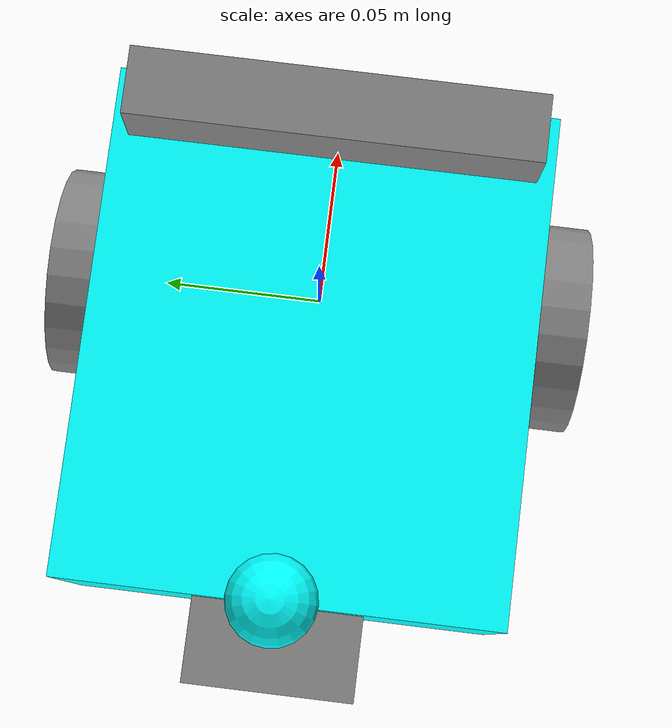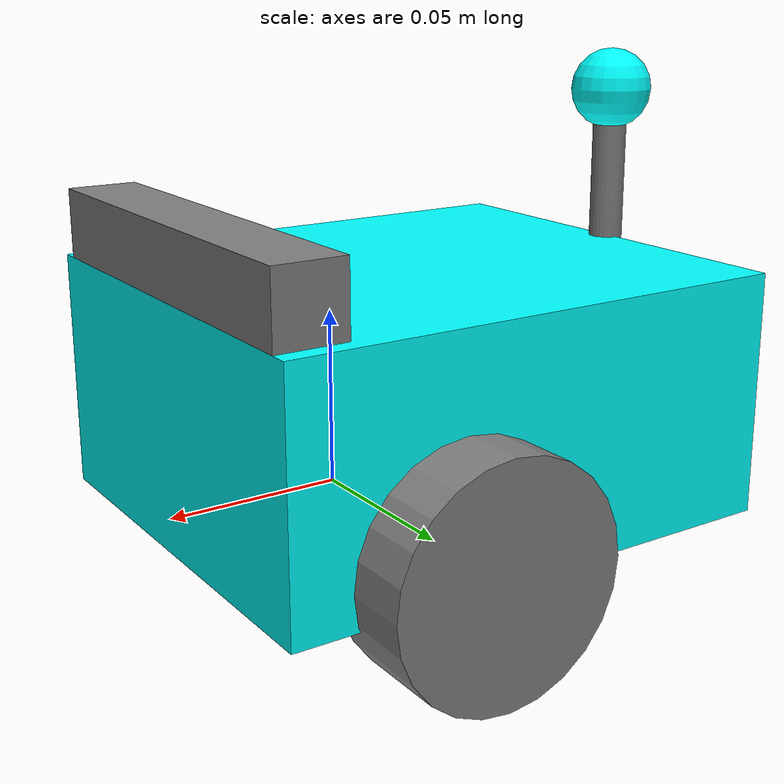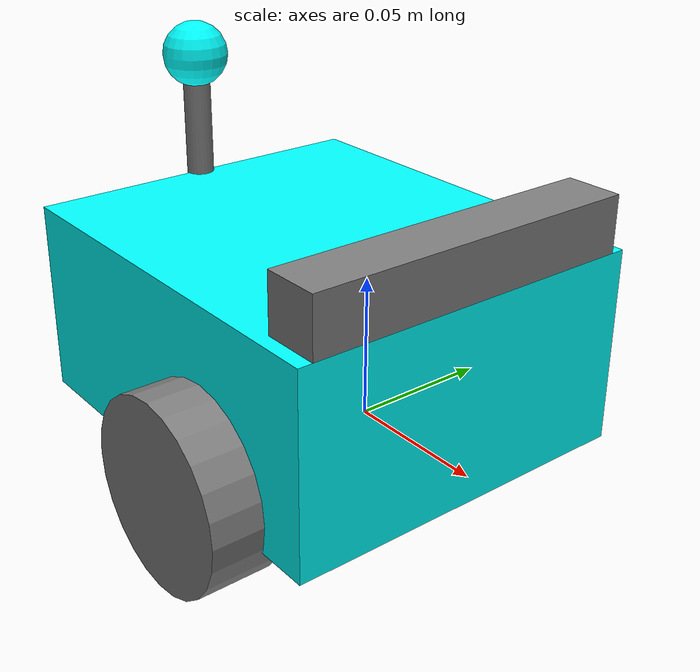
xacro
<?xml version="1.0" ?>
<robot name='robot' xmlns:xacro="http://ros.org/wiki/xacro">

    <xacro:include filename="$(find my_robot)/urdf/robot.gazebo.xacro" />

    <xacro:property name="chassis_length" value="0.15"/>
    <xacro:property name="chassis_width" value="0.13"/>
    <xacro:property name="chassis_height" value="0.07"/>

    <xacro:property name="wheel_radius" value="0.033"/>
    <xacro:property name="wheel_thickness" value="0.026"/>
    <xacro:property name="wheel_mass" value="0.05"/>

    <xacro:property name="wheel_offset_x" value="0.1"/>
    <xacro:property name="wheel_offset_y" value="0.07"/>
    <xacro:property name="wheel_offset_z" value="0.01"/>

    <xacro:property name="caster_wheel_radius" value="0.02"/>
    <xacro:property name="caster_wheel_mass" value="0.01"/>
    <xacro:property name="caster_wheel_offset_x" value="0.02"/>
    <xacro:property name="caster_wheel_offset_z" value="${wheel_offset_z - wheel_radius + caster_wheel_radius}"/>
    <xacro:property name="mass" value="1.0"/>
    <xacro:property name="M_PI" value="3.1415926535897931"/>

    <material name="Cyan">
        <color rgba="0 1.0 1.0 1.0"/>
    </material>

    <material name="Gray">
        <color rgba="0.5 0.5 0.5 1.0"/>
    </material>

    <link name="base_link">
    </link>

    <link name="base_footprint">
    </link>

    <joint name="base_footprint_joint" type="fixed">
        <parent link="base_link"/>
        <child link="base_footprint"/>
        <origin xyz="0 0 -0.138" rpy="0 0 0"/>
    </joint>

    <joint name="chassis_joint" type="fixed">
        <parent link="base_link"/>
        <child link="chassis"/>
        <origin xyz="${-wheel_offset_x} 0 ${-wheel_offset_z}"/>
    </joint>

    <link name='chassis'>
        <inertial>
            <origin xyz="${chassis_length/2} 0 ${chassis_height/2}" rpy="0 0 0"/>
            <mass value="${mass}" />
            <inertia ixx="${(1/12) * mass * (chassis_width*chassis_width+chassis_height*chassis_height)}" ixy="0.0" ixz="0.0"
                     iyy="${(1/12) * mass * (chassis_length*chassis_length+chassis_height*chassis_height)}" iyz="0.0"
                     izz="${(1/12) * mass * (chassis_length*chassis_length+chassis_width*chassis_width)}" />
        </inertial>
        <visual>
            <origin xyz="${chassis_length/2} 0 ${chassis_height/2}"/>
            <geometry>
                <box size="${chassis_length} ${chassis_width} ${chassis_height}"/>
            </geometry>
            <material name="Cyan"/>
        </visual>
        <collision>
            <origin xyz="${chassis_length/2} 0 ${chassis_height/2}"/>
            <geometry>
                <box size="${chassis_length} ${chassis_width} ${chassis_height}"/>
            </geometry>
        </collision>
    </link>

    <joint name="left_wheel_joint" type="continuous">
        <parent link="base_link"/>
        <child link="left_wheel"/>
        <origin xyz="0 ${wheel_offset_y} 0" rpy="-${M_PI/2} 0 0" />
        <axis xyz="0 0 1"/>
    </joint>

    <link name="left_wheel">
        <visual>
            <geometry>
                <cylinder radius="${wheel_radius}" length="${wheel_thickness}"/>
            </geometry>
            <material name="Gray"/>
        </visual>
        <collision>
            <geometry>
                <sphere radius="${wheel_radius}"/>
            </geometry>
        </collision>
        <inertial>
            <origin xyz="0 0 0" rpy="0 0 0"/>
            <mass value="${wheel_mass}" />
            <inertia ixx="${(1/12) * wheel_mass * (3*wheel_radius*wheel_radius + wheel_thickness*wheel_thickness)}" ixy="0.0" ixz="0.0"
                     iyy="${(1/12) * wheel_mass * (3*wheel_radius*wheel_radius + wheel_thickness*wheel_thickness)}" iyz="0.0"
                     izz="${(1/2) * wheel_mass * (wheel_radius*wheel_radius)}" />
        </inertial>
    </link>

    <joint name="right_wheel_joint" type="continuous">
        <parent link="base_link"/>
        <child link="right_wheel"/>
        <origin xyz="0 ${-wheel_offset_y} 0" rpy="${M_PI/2} 0 0" />
        <axis xyz="0 0 -1"/>
    </joint>

    <link name="right_wheel">
        <visual>
            <geometry>
                <cylinder radius="${wheel_radius}" length="${wheel_thickness}"/>
            </geometry>
            <material name="Gray"/>
        </visual>
        <collision>
            <geometry>
                <sphere radius="${wheel_radius}"/>
            </geometry>
        </collision>
        <inertial>
            <origin xyz="0 0 0" rpy="0 0 0"/>
            <mass value="${wheel_mass}" />
            <inertia ixx="${(1/12) * wheel_mass * (3*wheel_radius*wheel_radius + wheel_thickness*wheel_thickness)}" ixy="0.0" ixz="0.0"
                     iyy="${(1/12) * wheel_mass * (3*wheel_radius*wheel_radius + wheel_thickness*wheel_thickness)}" iyz="0.0"
                     izz="${(1/2) * wheel_mass * (wheel_radius*wheel_radius)}" />
        </inertial>
    </link>

    <joint name="caster_wheel_joint" type="fixed">
        <parent link="chassis"/>
        <child link="caster_wheel"/>
        <origin xyz="${caster_wheel_offset_x} 0 ${caster_wheel_offset_z}"/>
    </joint>

    <link name="caster_wheel">
        <visual>
            <geometry>
                <sphere radius="${caster_wheel_radius}"/>
            </geometry>
            <material name="Cyan"/>
        </visual>
        <collision>
            <geometry>
                <sphere radius="${caster_wheel_radius}"/>
            </geometry>
        </collision>
        <inertial>
            <origin xyz="0 0 0" rpy="0 0 0"/>
            <mass value="${caster_wheel_mass}" />
            <inertia ixx="${(2/5) * caster_wheel_mass * (caster_wheel_radius*caster_wheel_radius)}" ixy="0.0" ixz="0.0"
                     iyy="${(2/5) * caster_wheel_mass * (caster_wheel_radius*caster_wheel_radius)}" iyz="0.0"
                     izz="${(2/5) * caster_wheel_mass * (caster_wheel_radius*caster_wheel_radius)}" />
        </inertial>
    </link>

    <gazebo reference="caster_wheel">
        <mu1 value="0.001"/>
        <mu2 value="0.001"/>
    </gazebo>

    <!-- ANTENNA -->
    <link name="antenna_base">
        <visual>
            <origin xyz="0 0 0" rpy="0 0 0"/>
            <geometry>
                <cylinder radius="0.005" length="0.08"/>
            </geometry>
            <material name="Gray"/>
        </visual>
    </link>

    <joint name="antenna_base_joint" type="fixed">
        <parent link="chassis"/>
        <child link="antenna_base"/>
        <origin xyz="0 0 ${chassis_height/2 + 0.04}" rpy="0 0 0"/>
    </joint>

    <link name="antenna_tip">
        <visual>
            <origin xyz="0 0 0"/>
            <geometry>
                <sphere radius="0.012"/>
            </geometry>
            <material name="Cyan"/>
        </visual>
    </link>

    <joint name="antenna_tip_joint" type="fixed">
        <parent link="antenna_base"/>
        <child link="antenna_tip"/>
        <origin xyz="0 0 0.04" rpy="0 0 0"/>
    </joint>

    <!-- Sensors -->
    <gazebo reference="antenna_tip">
        <sensor name="gpu_lidar" type="gpu_lidar">
            <always_on>true</always_on>
            <visualize>true</visualize>
            <update_rate>10</update_rate>
            <topic>/scan</topic>
            <frame_id>antenna_tip</frame_id>
            <ray>
                <scan>
                    <horizontal>
                        <samples>360</samples>
                        <resolution>1</resolution>
                        <min_angle>-${M_PI}</min_angle>
                        <max_angle>${M_PI}</max_angle>
                    </horizontal>
                </scan>
                <range>
                    <min>0.08</min>
                    <max>10.0</max>
                    <resolution>0.01</resolution>
                </range>
                <noise>
                    <type>gaussian</type>
                    <mean>0.0</mean>
                    <stddev>0.01</stddev>
                </noise>
            </ray>
        </sensor>
    </gazebo>

    <link name="depth_frame">
        <visual>
            <origin xyz="0 0 0" rpy="0 0 0"/>
            <geometry>
                <box size="0.02 0.12 0.02"/>
            </geometry>
            <material name="Gray"/>
        </visual>
        <inertial>
            <origin xyz="0 0 0" rpy="0 0 0"/>
            <mass value="0.001"/>
            <inertia ixx="0.0001" ixy="0.0" ixz="0.0"
                     iyy="0.0001" iyz="0.0"
                     izz="0.0001"/>
        </inertial>
    </link>

    <joint name="depth_joint" type="fixed">
        <parent link="base_link"/>
        <child link="depth_frame"/>
        <origin xyz="0.04 0 0.07" rpy="0 0 0"/>
    </joint>

    <gazebo reference="depth_frame">
        <sensor name="depth_camera" type="depth_camera">
            <pose>0 0 0 0 0 0</pose>
            <always_on>true</always_on>
            <update_rate>10</update_rate>
            <camera>
                <horizontal_fov>1.51843645</horizontal_fov>
                <image>
                    <width>848</width>
                    <height>480</height>
                    <format>R_FLOAT32</format>
                </image>
                <clip>
                    <near>0.1</near>
                    <far>10</far>
                </clip>
                <lens>
                    <intrinsics>
                        <fx>421.61578369140625</fx>
                        <fy>421.61578369140625</fy>
                        <cx>422.2854309082031</cx>
                        <cy>236.57237243652344</cy>
                        <s>0</s>
                    </intrinsics>
                </lens>
                <noise>
                    <type>gaussian</type>
                    <mean>0.0</mean>
                    <stddev>0.007</stddev>
                </noise>
            </camera>
        </sensor>
    </gazebo>

    <link name="imu_link">
        <visual>
            <origin xyz="0 0 0" rpy="0 0 0"/>
            <geometry>
                <box size="0.05 0.05 0.05"/>
            </geometry>
            <material name="Gray"/>
        </visual>
        <inertial>
            <origin xyz="0 0 0" rpy="0 0 0"/>
            <mass value="0.001"/>
            <inertia ixx="0.000166667" ixy="0.0" ixz="0.0"
                    iyy="0.000166667" iyz="0.0"
                    izz="0.000166667"/>
        </inertial>
    </link>

    <joint name="imu_joint" type="fixed">
        <parent link="chassis"/>
        <child link="imu_link"/>
        <origin xyz="0 0 0.03" rpy="0 0 0"/>
    </joint>

    <gazebo reference="imu_link">
        <sensor name="imu_sensor" type="imu">
            <pose>0 0 0 0 0 0</pose>
            <always_on>1</always_on>
            <update_rate>100</update_rate>
            <visualize>true</visualize>
            <topic>imu</topic>

        </sensor>
    </gazebo>
</robot>
